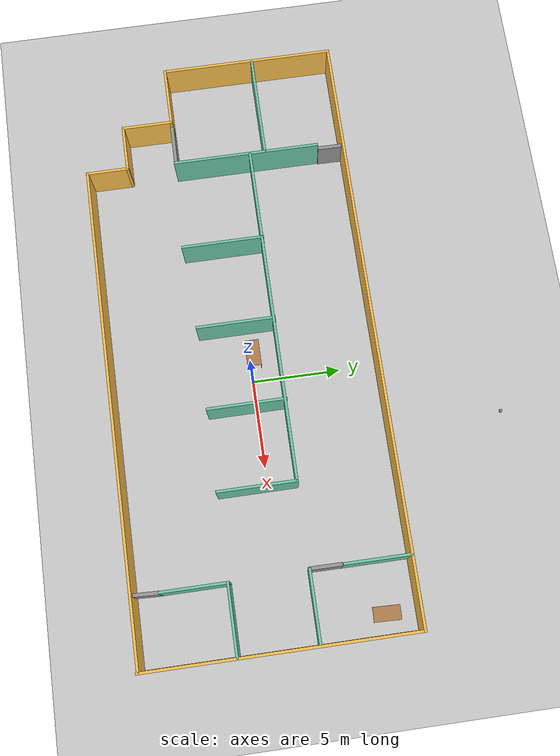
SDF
<sdf version="1.6">
 <world name="default">
  <model name="ground_plane">
   <static>1</static>
   <link name="link">
    <collision name="collision">
     <geometry><plane><normal>0 0 1</normal><size>100 100</size></plane></geometry>
     <surface><friction><ode><mu>100</mu><mu2>50</mu2></ode></friction></surface>
    </collision>
    <visual name="visual">
     <cast_shadows>0</cast_shadows>
     <geometry><plane><normal>0 0 1</normal><size>100 100</size></plane></geometry>
     <material>
      <script><uri>file://media/materials/scripts/gazebo.material</uri><name>Gazebo/Grey</name></script>
     </material>
    </visual>
   </link>
  </model>
  <model name="Building">
   <pose>-2.0428 -0.42646 0 0 -0 0</pose>
   <link name="Door_0">
    <collision name="Door_0_Collision">
     <geometry><box><size>2.58109 0.2 2</size></box></geometry>
     <pose>0 0 1 0 -0 0</pose>
    </collision>
    <visual name="Door_0_Visual">
     <pose>0 0 1 0 -0 0</pose>
     <geometry><box><size>2.58109 0.2 2</size></box></geometry>
     <material>
      <script><uri>file://media/materials/scripts/gazebo.material</uri><name>Gazebo/Grey</name></script>
     </material>
    </visual>
    <pose>-12.3535 -2.32405 0 0 -0 3.13435</pose>
   </link>
   <link name="Door_1">
    <collision name="Door_1_Collision">
     <geometry><box><size>1.8268 0.2 2</size></box></geometry>
     <pose>0 0 1 0 -0 0</pose>
    </collision>
    <visual name="Door_1_Visual">
     <pose>0 0 1 0 -0 0</pose>
     <geometry><box><size>1.8268 0.2 2</size></box></geometry>
     <material>
      <script><uri>file://media/materials/scripts/gazebo.material</uri><name>Gazebo/Grey</name></script>
     </material>
    </visual>
    <pose>13.0292 2.92693 0 0 -0 1.5655</pose>
   </link>
   <link name="Door_2">
    <collision name="Door_2_Collision">
     <geometry><box><size>1.47434 0.2 2</size></box></geometry>
     <pose>0 0 1 0 -0 0</pose>
    </collision>
    <visual name="Door_2_Visual">
     <pose>0 0 1 0 -0 0</pose>
     <geometry><box><size>1.47434 0.2 2</size></box></geometry>
     <material>
      <script><uri>file://media/materials/scripts/gazebo.material</uri><name>Gazebo/Grey</name></script>
     </material>
    </visual>
    <pose>13.1149 -6.73153 0 0 -0 1.52915</pose>
   </link>
   <link name="Door_3">
    <collision name="Door_3_Collision">
     <geometry><box><size>1.38773 0.2 2</size></box></geometry>
     <pose>0 0 1 0 -0 0</pose>
    </collision>
    <visual name="Door_3_Visual">
     <pose>0 0 1 0 -0 0</pose>
     <geometry><box><size>1.38773 0.2 2</size></box></geometry>
     <material>
      <script><uri>file://media/materials/scripts/gazebo.material</uri><name>Gazebo/Grey</name></script>
     </material>
    </visual>
    <pose>-11.0417 6.77121 0 0 0 -1.58178</pose>
   </link>
   <link name="Wall_0">
    <collision name="Wall_0_Collision">
     <geometry><box><size>28.25 0.15 2.5</size></box></geometry>
     <pose>0 0 1.25 0 -0 0</pose>
    </collision>
    <visual name="Wall_0_Visual">
     <pose>0 0 1.25 0 -0 0</pose>
     <geometry><box><size>28.25 0.15 2.5</size></box></geometry>
     <material>
      <script><uri>file://media/materials/scripts/gazebo.material</uri><name>Gazebo/Grey</name></script>
      <ambient>1 0.764706 0.305882 1</ambient>
     </material>
     <meta><layer>0</layer></meta>
    </visual>
    <pose>2.95 -7.5 0 0 -0 0</pose>
   </link>
   <link name="Wall_10">
    <collision name="Wall_10_Collision">
     <geometry><box><size>8.5 0.15 2.5</size></box></geometry>
     <pose>0 0 1.25 0 -0 0</pose>
    </collision>
    <visual name="Wall_10_Visual">
     <pose>0 0 1.25 0 -0 0</pose>
     <geometry><box><size>8.5 0.15 2.5</size></box></geometry>
     <material>
      <script><uri>file://media/materials/scripts/gazebo.material</uri><name>Gazebo/Grey</name></script>
      <ambient>0.435294 0.796078 0.67451 1</ambient>
     </material>
     <meta><layer>0</layer></meta>
    </visual>
    <pose>-11.0694 1.81529 0 0 0 -1.5708</pose>
   </link>
   <link name="Wall_12">
    <collision name="Wall_12_Collision">
     <geometry><box><size>6 0.15 2.5</size></box></geometry>
     <pose>0 0 1.25 0 -0 0</pose>
    </collision>
    <visual name="Wall_12_Visual">
     <pose>0 0 1.25 0 -0 0</pose>
     <geometry><box><size>6 0.15 2.5</size></box></geometry>
     <material>
      <script><uri>file://media/materials/scripts/gazebo.material</uri><name>Gazebo/Grey</name></script>
      <ambient>0.435294 0.796078 0.67451 1</ambient>
     </material>
     <meta><layer>0</layer></meta>
    </visual>
    <pose>-14.0177 2.93127 0 0 -0 0</pose>
   </link>
   <link name="Wall_14">
    <collision name="Wall_14_Collision">
     <geometry><box><size>19.5 0.15 2.5</size></box></geometry>
     <pose>0 0 1.25 0 -0 0</pose>
    </collision>
    <visual name="Wall_14_Visual">
     <pose>0 0 1.25 0 -0 0</pose>
     <geometry><box><size>19.5 0.15 2.5</size></box></geometry>
     <material>
      <script><uri>file://media/materials/scripts/gazebo.material</uri><name>Gazebo/Grey</name></script>
      <ambient>0.435294 0.796078 0.67451 1</ambient>
     </material>
     <meta><layer>0</layer></meta>
    </visual>
    <pose>-1.33323 2.04415 0 0 -0 0</pose>
   </link>
   <link name="Wall_15">
    <collision name="Wall_15_Collision">
     <geometry><box><size>4.5 0.15 2.5</size></box></geometry>
     <pose>0 0 1.25 0 -0 0</pose>
    </collision>
    <visual name="Wall_15_Visual">
     <pose>0 0 1.25 0 -0 0</pose>
     <geometry><box><size>4.5 0.15 2.5</size></box></geometry>
     <material>
      <script><uri>file://media/materials/scripts/gazebo.material</uri><name>Gazebo/Grey</name></script>
      <ambient>0.435294 0.796078 0.67451 1</ambient>
     </material>
     <meta><layer>0</layer></meta>
    </visual>
    <pose>8.34177 -0.130849 0 0 0 -1.5708</pose>
   </link>
   <link name="Wall_17">
    <collision name="Wall_17_Collision">
     <geometry><box><size>4.5 0.15 2.5</size></box></geometry>
     <pose>0 0 1.25 0 -0 0</pose>
    </collision>
    <visual name="Wall_17_Visual">
     <pose>0 0 1.25 0 -0 0</pose>
     <geometry><box><size>4.5 0.15 2.5</size></box></geometry>
     <material>
      <script><uri>file://media/materials/scripts/gazebo.material</uri><name>Gazebo/Grey</name></script>
      <ambient>0.435294 0.796078 0.67451 1</ambient>
     </material>
     <meta><layer>0</layer></meta>
    </visual>
    <pose>-0.944044 -0.100258 0 0 0 -1.5708</pose>
   </link>
   <link name="Wall_19">
    <collision name="Wall_19_Collision">
     <geometry><box><size>4.75 0.15 2.5</size></box></geometry>
     <pose>0 0 1.25 0 -0 0</pose>
    </collision>
    <visual name="Wall_19_Visual">
     <pose>0 0 1.25 0 -0 0</pose>
     <geometry><box><size>4.75 0.15 2.5</size></box></geometry>
     <material>
      <script><uri>file://media/materials/scripts/gazebo.material</uri><name>Gazebo/Grey</name></script>
      <ambient>0.435294 0.796078 0.67451 1</ambient>
     </material>
     <meta><layer>0</layer></meta>
    </visual>
    <pose>-5.80789 -0.225258 0 0 0 -1.5708</pose>
   </link>
   <link name="Wall_2">
    <collision name="Wall_2_Collision">
     <geometry><box><size>2.5 0.15 2.5</size></box></geometry>
     <pose>0 0 1.25 0 -0 0</pose>
    </collision>
    <visual name="Wall_2_Visual">
     <pose>0 0 1.25 0 -0 0</pose>
     <geometry><box><size>2.5 0.15 2.5</size></box></geometry>
     <material>
      <script><uri>file://media/materials/scripts/gazebo.material</uri><name>Gazebo/Grey</name></script>
      <ambient>1 0.764706 0.305882 1</ambient>
     </material>
     <meta><layer>0</layer></meta>
    </visual>
    <pose>-11.1 -6.325 0 0 -0 1.5708</pose>
   </link>
   <link name="Wall_21">
    <collision name="Wall_21_Collision">
     <geometry><box><size>4.5 0.15 2.5</size></box></geometry>
     <pose>0 0 1.25 0 -0 0</pose>
    </collision>
    <visual name="Wall_21_Visual">
     <pose>0 0 1.25 0 -0 0</pose>
     <geometry><box><size>4.5 0.15 2.5</size></box></geometry>
     <material>
      <script><uri>file://media/materials/scripts/gazebo.material</uri><name>Gazebo/Grey</name></script>
      <ambient>0.435294 0.796078 0.67451 1</ambient>
     </material>
     <meta><layer>0</layer></meta>
    </visual>
    <pose>3.76685 -0.100258 0 0 0 -1.5708</pose>
   </link>
   <link name="Wall_25">
    <collision name="Wall_25_Collision">
     <geometry><box><size>4 0.15 2.5</size></box></geometry>
     <pose>0 0 1.25 0 -0 0</pose>
    </collision>
    <visual name="Wall_25_Visual">
     <pose>0 0 1.25 0 -0 0</pose>
     <geometry><box><size>4 0.15 2.5</size></box></geometry>
     <material>
      <script><uri>file://media/materials/scripts/gazebo.material</uri><name>Gazebo/Grey</name></script>
      <ambient>0.435294 0.796078 0.67451 1</ambient>
     </material>
     <meta><layer>0</layer></meta>
    </visual>
    <pose>14.9913 2.04415 0 0 -0 0</pose>
   </link>
   <link name="Wall_27">
    <collision name="Wall_27_Collision">
     <geometry><box><size>4 0.15 2.5</size></box></geometry>
     <pose>0 0 1.25 0 -0 0</pose>
    </collision>
    <visual name="Wall_27_Visual">
     <pose>0 0 1.25 0 -0 0</pose>
     <geometry><box><size>4 0.15 2.5</size></box></geometry>
     <material>
      <script><uri>file://media/materials/scripts/gazebo.material</uri><name>Gazebo/Grey</name></script>
      <ambient>0.435294 0.796078 0.67451 1</ambient>
     </material>
     <meta><layer>0</layer></meta>
    </visual>
    <pose>15.0831 -2.33025 0 0 -0 0</pose>
   </link>
   <link name="Wall_29">
    <collision name="Wall_29_Collision">
     <geometry><box><size>3.75 0.15 2.5</size></box></geometry>
     <pose>0 0 1.25 0 -0 0</pose>
    </collision>
    <visual name="Wall_29_Visual">
     <pose>0 0 1.25 0 -0 0</pose>
     <geometry><box><size>3.75 0.15 2.5</size></box></geometry>
     <material>
      <script><uri>file://media/materials/scripts/gazebo.material</uri><name>Gazebo/Grey</name></script>
      <ambient>0.435294 0.796078 0.67451 1</ambient>
     </material>
     <meta><layer>0</layer></meta>
    </visual>
    <pose>13.1581 -4.13025 0 0 0 -1.5708</pose>
   </link>
   <link name="Wall_3">
    <collision name="Wall_3_Collision">
     <geometry><box><size>2.75 0.15 2.5</size></box></geometry>
     <pose>0 0 1.25 0 -0 0</pose>
    </collision>
    <visual name="Wall_3_Visual">
     <pose>0 0 1.25 0 -0 0</pose>
     <geometry><box><size>2.75 0.15 2.5</size></box></geometry>
     <material>
      <script><uri>file://media/materials/scripts/gazebo.material</uri><name>Gazebo/Grey</name></script>
      <ambient>1 0.764706 0.305882 1</ambient>
     </material>
     <meta><layer>0</layer></meta>
    </visual>
    <pose>-12.4 -5.15 0 0 -0 3.14159</pose>
   </link>
   <link name="Wall_31">
    <collision name="Wall_31_Collision">
     <geometry><box><size>3.75 0.15 2.5</size></box></geometry>
     <pose>0 0 1.25 0 -0 0</pose>
    </collision>
    <visual name="Wall_31_Visual">
     <pose>0 0 1.25 0 -0 0</pose>
     <geometry><box><size>3.75 0.15 2.5</size></box></geometry>
     <material>
      <script><uri>file://media/materials/scripts/gazebo.material</uri><name>Gazebo/Grey</name></script>
      <ambient>0.435294 0.796078 0.67451 1</ambient>
     </material>
     <meta><layer>0</layer></meta>
    </visual>
    <pose>13.0663 5.71016 0 0 -0 1.5708</pose>
   </link>
   <link name="Wall_4">
    <collision name="Wall_4_Collision">
     <geometry><box><size>3 0.15 2.5</size></box></geometry>
     <pose>0 0 1.25 0 -0 0</pose>
    </collision>
    <visual name="Wall_4_Visual">
     <pose>0 0 1.25 0 -0 0</pose>
     <geometry><box><size>3 0.15 2.5</size></box></geometry>
     <material>
      <script><uri>file://media/materials/scripts/gazebo.material</uri><name>Gazebo/Grey</name></script>
      <ambient>1 0.764706 0.305882 1</ambient>
     </material>
     <meta><layer>0</layer></meta>
    </visual>
    <pose>-13.7 -3.725 0 0 -0 1.5708</pose>
   </link>
   <link name="Wall_5">
    <collision name="Wall_5_Collision">
     <geometry><box><size>3.5 0.15 2.5</size></box></geometry>
     <pose>0 0 1.25 0 -0 0</pose>
    </collision>
    <visual name="Wall_5_Visual">
     <pose>0 0 1.25 0 -0 0</pose>
     <geometry><box><size>3.5 0.15 2.5</size></box></geometry>
     <material>
      <script><uri>file://media/materials/scripts/gazebo.material</uri><name>Gazebo/Grey</name></script>
      <ambient>1 0.764706 0.305882 1</ambient>
     </material>
     <meta><layer>0</layer></meta>
    </visual>
    <pose>-15.375 -2.3 0 0 -0 3.14159</pose>
   </link>
   <link name="Wall_6">
    <collision name="Wall_6_Collision">
     <geometry><box><size>10 0.15 2.5</size></box></geometry>
     <pose>0 0 1.25 0 -0 0</pose>
    </collision>
    <visual name="Wall_6_Visual">
     <pose>0 0 1.25 0 -0 0</pose>
     <geometry><box><size>10 0.15 2.5</size></box></geometry>
     <material>
      <script><uri>file://media/materials/scripts/gazebo.material</uri><name>Gazebo/Grey</name></script>
      <ambient>1 0.764706 0.305882 1</ambient>
     </material>
     <meta><layer>0</layer></meta>
    </visual>
    <pose>-17.05 2.625 0 0 -0 1.5708</pose>
   </link>
   <link name="Wall_7">
    <collision name="Wall_7_Collision">
     <geometry><box><size>34.25 0.15 2.5</size></box></geometry>
     <pose>0 0 1.25 0 -0 0</pose>
    </collision>
    <visual name="Wall_7_Visual">
     <pose>0 0 1.25 0 -0 0</pose>
     <geometry><box><size>34.25 0.15 2.5</size></box></geometry>
     <material>
      <script><uri>file://media/materials/scripts/gazebo.material</uri><name>Gazebo/Grey</name></script>
      <ambient>1 0.764706 0.305882 1</ambient>
     </material>
     <meta><layer>0</layer></meta>
    </visual>
    <pose>0 7.55 0 0 -0 0</pose>
   </link>
   <link name="Wall_8">
    <collision name="Wall_8_Collision">
     <geometry><box><size>15.25 0.15 2.5</size></box></geometry>
     <pose>0 0 1.25 0 -0 0</pose>
    </collision>
    <visual name="Wall_8_Visual">
     <pose>0 0 1.25 0 -0 0</pose>
     <geometry><box><size>15.25 0.15 2.5</size></box></geometry>
     <material>
      <script><uri>file://media/materials/scripts/gazebo.material</uri><name>Gazebo/Grey</name></script>
      <ambient>1 0.764706 0.305882 1</ambient>
     </material>
     <meta><layer>0</layer></meta>
    </visual>
    <pose>17.05 0 0 0 0 -1.5708</pose>
   </link>
   <static>1</static>
  </model>
  <model name="table_clone_0">
   <static>1</static>
   <link name="link">
    <collision name="surface">
     <pose>0 0 1 0 -0 0</pose>
     <geometry><box><size>1.5 0.8 0.03</size></box></geometry>
     <surface><friction><ode><mu>0.6</mu><mu2>0.6</mu2></ode></friction></surface>
    </collision>
    <visual name="visual1">
     <pose>0 0 1 0 -0 0</pose>
     <geometry><box><size>1.5 0.8 0.03</size></box></geometry>
     <material>
      <script><uri>file://media/materials/scripts/gazebo.material</uri><name>Gazebo/Wood</name></script>
     </material>
    </visual>
    <collision name="front_left_leg">
     <pose>0.68 0.38 0.5 0 -0 0</pose>
     <geometry><cylinder><radius>0.02</radius><length>1</length></cylinder></geometry>
    </collision>
    <visual name="front_left_leg">
     <pose>0.68 0.38 0.5 0 -0 0</pose>
     <geometry><cylinder><radius>0.02</radius><length>1</length></cylinder></geometry>
     <material>
      <script><uri>file://media/materials/scripts/gazebo.material</uri><name>Gazebo/Grey</name></script>
     </material>
    </visual>
    <collision name="front_right_leg">
     <pose>0.68 -0.38 0.5 0 -0 0</pose>
     <geometry><cylinder><radius>0.02</radius><length>1</length></cylinder></geometry>
    </collision>
    <visual name="front_right_leg">
     <pose>0.68 -0.38 0.5 0 -0 0</pose>
     <geometry><cylinder><radius>0.02</radius><length>1</length></cylinder></geometry>
     <material>
      <script><uri>file://media/materials/scripts/gazebo.material</uri><name>Gazebo/Grey</name></script>
     </material>
    </visual>
    <collision name="back_right_leg">
     <pose>-0.68 -0.38 0.5 0 -0 0</pose>
     <geometry><cylinder><radius>0.02</radius><length>1</length></cylinder></geometry>
    </collision>
    <visual name="back_right_leg">
     <pose>-0.68 -0.38 0.5 0 -0 0</pose>
     <geometry><cylinder><radius>0.02</radius><length>1</length></cylinder></geometry>
     <material>
      <script><uri>file://media/materials/scripts/gazebo.material</uri><name>Gazebo/Grey</name></script>
     </material>
    </visual>
    <collision name="back_left_leg">
     <pose>-0.68 0.38 0.5 0 -0 0</pose>
     <geometry><cylinder><radius>0.02</radius><length>1</length></cylinder></geometry>
    </collision>
    <visual name="back_left_leg">
     <pose>-0.68 0.38 0.5 0 -0 0</pose>
     <geometry><cylinder><radius>0.02</radius><length>1</length></cylinder></geometry>
     <material>
      <script><uri>file://media/materials/scripts/gazebo.material</uri><name>Gazebo/Grey</name></script>
     </material>
    </visual>
   </link>
   <pose>-1.48723 0.201904 0 0 -0 0</pose>
  </model>
  <model name="table_clone_clone_0_clone_0">
   <static>1</static>
   <link name="link">
    <collision name="surface">
     <pose>0 0 1 0 -0 0</pose>
     <geometry><box><size>1.5 0.8 0.03</size></box></geometry>
     <surface><friction><ode><mu>0.6</mu><mu2>0.6</mu2></ode></friction></surface>
    </collision>
    <visual name="visual1">
     <pose>0 0 1 0 -0 0</pose>
     <geometry><box><size>1.5 0.8 0.03</size></box></geometry>
     <material>
      <script><uri>file://media/materials/scripts/gazebo.material</uri><name>Gazebo/Wood</name></script>
     </material>
    </visual>
    <collision name="front_left_leg">
     <pose>0.68 0.38 0.5 0 -0 0</pose>
     <geometry><cylinder><radius>0.02</radius><length>1</length></cylinder></geometry>
    </collision>
    <visual name="front_left_leg">
     <pose>0.68 0.38 0.5 0 -0 0</pose>
     <geometry><cylinder><radius>0.02</radius><length>1</length></cylinder></geometry>
     <material>
      <script><uri>file://media/materials/scripts/gazebo.material</uri><name>Gazebo/Grey</name></script>
     </material>
    </visual>
    <collision name="front_right_leg">
     <pose>0.68 -0.38 0.5 0 -0 0</pose>
     <geometry><cylinder><radius>0.02</radius><length>1</length></cylinder></geometry>
    </collision>
    <visual name="front_right_leg">
     <pose>0.68 -0.38 0.5 0 -0 0</pose>
     <geometry><cylinder><radius>0.02</radius><length>1</length></cylinder></geometry>
     <material>
      <script><uri>file://media/materials/scripts/gazebo.material</uri><name>Gazebo/Grey</name></script>
     </material>
    </visual>
    <collision name="back_right_leg">
     <pose>-0.68 -0.38 0.5 0 -0 0</pose>
     <geometry><cylinder><radius>0.02</radius><length>1</length></cylinder></geometry>
    </collision>
    <visual name="back_right_leg">
     <pose>-0.68 -0.38 0.5 0 -0 0</pose>
     <geometry><cylinder><radius>0.02</radius><length>1</length></cylinder></geometry>
     <material>
      <script><uri>file://media/materials/scripts/gazebo.material</uri><name>Gazebo/Grey</name></script>
     </material>
    </visual>
    <collision name="back_left_leg">
     <pose>-0.68 0.38 0.5 0 -0 0</pose>
     <geometry><cylinder><radius>0.02</radius><length>1</length></cylinder></geometry>
    </collision>
    <visual name="back_left_leg">
     <pose>-0.68 0.38 0.5 0 -0 0</pose>
     <geometry><cylinder><radius>0.02</radius><length>1</length></cylinder></geometry>
     <material>
      <script><uri>file://media/materials/scripts/gazebo.material</uri><name>Gazebo/Grey</name></script>
     </material>
    </visual>
   </link>
   <pose>13.8345 5.41323 0 0 0 -1.60509</pose>
  </model>
  <model name="my_ball">
   <link name="link_0">
    <inertial>
     <mass>1</mass>
     <inertia><ixx>0.1</ixx><ixy>0</ixy><ixz>0</ixz><iyy>0.1</iyy><iyz>0</iyz><izz>0.1</izz></inertia>
    </inertial>
    <visual name="visual">
     <geometry><sphere><radius>0.1</radius></sphere></geometry>
     <material>
      <lighting>1</lighting>
      <script><uri>file://media/materials/scripts/gazebo.material</uri><name>Gazebo/Grey</name></script>
      <shader type="pixel"><normal_map>__default__</normal_map></shader>
      <ambient>1 1 1 1</ambient>
      <diffuse>1 1 1 1</diffuse>
      <specular>1 1 1 1</specular>
      <emissive>0 0 0 1</emissive>
     </material>
    </visual>
    <collision name="collision">
     <geometry><sphere><radius>0.1</radius></sphere></geometry>
     <surface>
      <friction>
       <ode><mu>1</mu><mu2>1</mu2><fdir1>0 0 0</fdir1><slip1>0</slip1><slip2>0</slip2></ode>
       <torsional>
        <coefficient>1</coefficient>
        <patch_radius>0</patch_radius>
        <surface_radius>0</surface_radius>
        <use_patch_radius>1</use_patch_radius>
        <ode><slip>0</slip></ode>
       </torsional>
      </friction>
      <bounce><restitution_coefficient>0</restitution_coefficient><threshold>1e+06</threshold></bounce>
      <contact>
       <collide_without_contact>0</collide_without_contact>
       <collide_without_contact_bitmask>1</collide_without_contact_bitmask>
       <collide_bitmask>1</collide_bitmask>
       <ode>
        <soft_cfm>0</soft_cfm>
        <soft_erp>0.2</soft_erp>
        <kp>1e+13</kp>
        <kd>1</kd>
        <max_vel>0.01</max_vel>
        <min_depth>0</min_depth>
       </ode>
       <bullet>
        <split_impulse>1</split_impulse>
        <split_impulse_penetration_threshold>-0.01</split_impulse_penetration_threshold>
        <soft_cfm>0</soft_cfm>
        <soft_erp>0.2</soft_erp>
        <kp>1e+13</kp>
        <kd>1</kd>
       </bullet>
      </contact>
     </surface>
    </collision>
   </link>
   <static>0</static>
   <pose>3.66155 13.7437 0.1 0 -0 0</pose>
  </model>
 </world>
</sdf>
